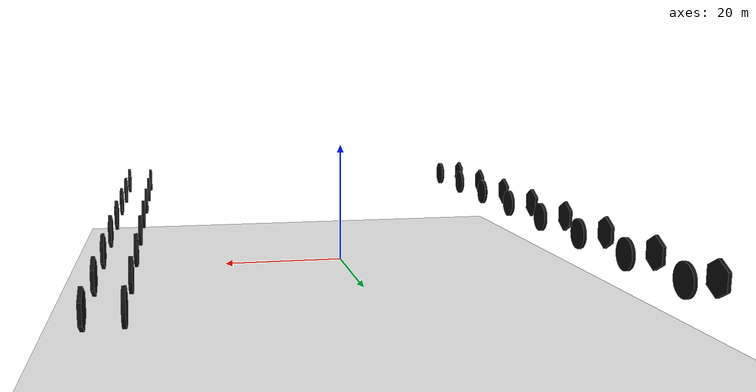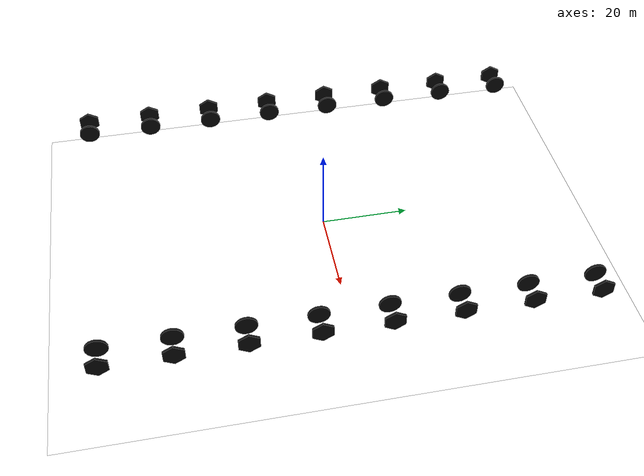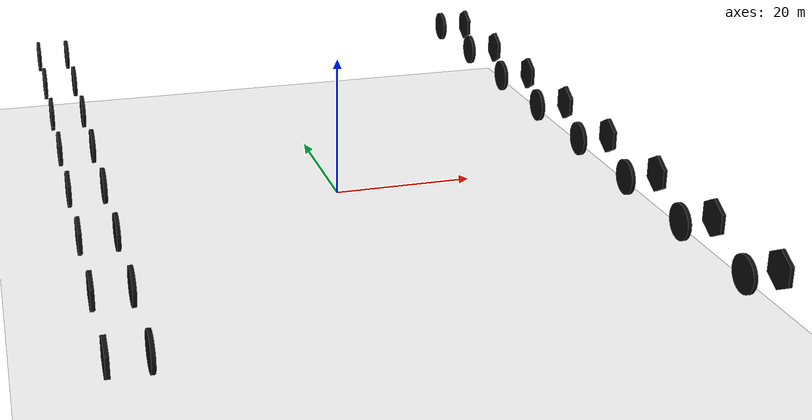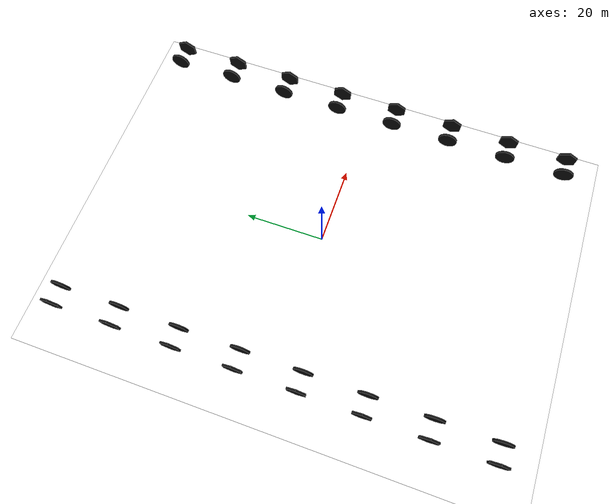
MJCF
<mujoco>
    <compiler texturedir="asset"/>

    <statistic meansize=".05"/>

    <default>
      <geom solref="0.004 1" solimp=".99 .99 .00001"  condim="4"/>
    </default>

    <asset>
      <texture name="field_pattern" type="2d" file="field.png"/>
      <material name="field" texture="field_pattern"/>

      <texture name="black_color" type="2d" file="black.png"/>
      <material name="black" texture="black_color"/>

      <mesh name="outside_rubber" file="asset/outside_rubber/table_outside_rubber.obj" scale='0.1 0.1 0.1'/>
    </asset>

    <worldbody>
      <light directional="true"  specular="0.2 0.2 0.2" pos="0 0 4" dir="0 0 -1"/>

      <body name="background" pos="0 0 -5" euler="0 0 0">
        <geom type="plane" size="500 500 .01" rgba="1.0 1.0 1.0 1.0" contype="0" conaffinity="0"/>
      </body>

      <body name="ground" pos="0 0 -0.03" euler="0 0 180">
        <geom type="plane" size="35 63 0.01" material="field" friction="0.01 0.1 10"/>
      </body>

    <!-- Table's inside rubber pads -->
      <body name="table_side_rubber_y_goal_r">
        <geom type="cylinder" pos="-33.75 -52.5 7.75" euler="90 90 0" size="2.4 0.25"
              contype="5" conaffinity="5" rgba='0.05 0.05 0.05 1' friction="0.01" group="2"/>
      </body>
      <body name="table_side_rubber_y_goal_l">
        <geom type="cylinder" pos="33.75 -52.5 7.75" euler="90 90 0" size="2.4 0.25"
              contype="5" conaffinity="5" rgba='0.05 0.05 0.05 1' friction="0.01" group="2"/>
      </body>
      <body name="table_side_rubber_y_def_r">
        <geom type="cylinder" pos="-33.75 -37.5 7.75" euler="90 90 0" size="2.4 0.25"
              contype="5" conaffinity="5" rgba='0.05 0.05 0.05 1' friction="0.01" group="2"/>
      </body>
      <body name="table_side_rubber_y_def_l">
        <geom type="cylinder" pos="33.75 -37.5 7.75" euler="90 90 0" size="2.4 0.25"
              contype="5" conaffinity="5" rgba='0.05 0.05 0.05 1' friction="0.01" group="2"/>
      </body>
      <body name="table_side_rubber_y_mid_r">
        <geom type="cylinder" pos="-33.75 -7.5 7.75" euler="90 90 0" size="2.4 0.25"
              contype="5" conaffinity="5" rgba='0.05 0.05 0.05 1' friction="0.01" group="2"/>
      </body>
      <body name="table_side_rubber_y_mid_l">
        <geom type="cylinder" pos="33.75 -7.5 7.75" euler="90 90 0" size="2.4 0.25"
              contype="5" conaffinity="5" rgba='0.05 0.05 0.05 1' friction="0.01" group="2"/>
      </body>
      <body name="table_side_rubber_y_attack_r">
        <geom type="cylinder" pos="-33.75 22.5 7.75" euler="90 90 0" size="2.4 0.25"
              contype="5" conaffinity="5" rgba='0.05 0.05 0.05 1' friction="0.01" group="2"/>
      </body>
      <body name="table_side_rubber_y_attack_l">
        <geom type="cylinder" pos="33.75 22.5 7.75" euler="90 90 0" size="2.4 0.25"
              contype="5" conaffinity="5" rgba='0.05 0.05 0.05 1' friction="0.01" group="2"/>
      </body>

      <body name="table_side_rubber_b_goal_r">
        <geom type="cylinder" pos="-33.75 52.5 7.75" euler="90 90 0" size="2.4 0.25"
              contype="5" conaffinity="5" rgba='0.05 0.05 0.05 1' friction="0.01" group="2"/>
      </body>
      <body name="table_side_rubber_b_goal_l">
        <geom type="cylinder" pos="33.75 52.5 7.75" euler="90 90 0" size="2.4 0.25"
              contype="5" conaffinity="5" rgba='0.05 0.05 0.05 1' friction="0.01" group="2"/>
      </body>
      <body name="table_side_rubber_b_def_r">
        <geom type="cylinder" pos="-33.75 37.5 7.75" euler="90 90 0" size="2.4 0.25"
              contype="5" conaffinity="5" rgba='0.05 0.05 0.05 1' friction="0.01" group="2"/>
      </body>
      <body name="table_side_rubber_b_def_l">
        <geom type="cylinder" pos="33.75 37.5 7.75" euler="90 90 0" size="2.4 0.25"
              contype="5" conaffinity="5" rgba='0.05 0.05 0.05 1' friction="0.01" group="2"/>
      </body>
      <body name="table_side_rubber_b_mid_r">
        <geom type="cylinder" pos="-33.75 7.5 7.75" euler="90 90 0" size="2.4 0.25"
              contype="5" conaffinity="5" rgba='0.05 0.05 0.05 1' friction="0.01" group="2"/>
      </body>
      <body name="table_side_rubber_b_mid_l">
        <geom type="cylinder" pos="33.75 7.5 7.75" euler="90 90 0" size="2.4 0.25"
              contype="5" conaffinity="5" rgba='0.05 0.05 0.05 1' friction="0.01" group="2"/>
      </body>
      <body name="table_side_rubber_b_attack_r">
        <geom type="cylinder" pos="-33.75 -22.5 7.75" euler="90 90 0" size="2.4 0.25"
              contype="5" conaffinity="5" rgba='0.05 0.05 0.05 1' friction="0.01" group="2"/>
      </body>
      <body name="table_side_rubber_b_attack_l">
        <geom type="cylinder" pos="33.75 -22.5 7.75" euler="90 90 0" size="2.4 0.25"
              contype="5" conaffinity="5" rgba='0.05 0.05 0.05 1' friction="0.01" group="2"/>
      </body>

    <!-- Table's outside rubber pads -->
      <body name="outside_rubber_y_goal_r" pos="-38.35 -52.5 7.75" euler="0 0 90">
        <geom contype="0" conaffinity="0" type="mesh" mesh="outside_rubber" rgba='0.05 0.05 0.05 1' group="2"></geom>
      </body>
      <body name="outside_rubber_y_goal_l" pos="38.35 -52.5 7.75" euler="0 0 90">
        <geom contype="0" conaffinity="0" type="mesh" mesh="outside_rubber" rgba='0.05 0.05 0.05 1' group="2"></geom>
      </body>
      <body name="outside_rubber_y_def_r" pos="-38.35 -37.5 7.75" euler="0 0 90">
        <geom contype="0" conaffinity="0" type="mesh" mesh="outside_rubber" rgba='0.05 0.05 0.05 1' group="2"></geom>
      </body>
      <body name="outside_rubber_y_def_l" pos="38.35 -37.5 7.75" euler="0 0 90">
        <geom contype="0" conaffinity="0" type="mesh" mesh="outside_rubber" rgba='0.05 0.05 0.05 1' group="2"></geom>
      </body>
      <body name="outside_rubber_y_mid_r" pos="-38.35 -7.5 7.75" euler="0 0 90">
        <geom contype="0" conaffinity="0" type="mesh" mesh="outside_rubber" rgba='0.05 0.05 0.05 1' group="2"></geom>
      </body>
      <body name="outside_rubber_y_mid_l" pos="38.35 -7.5 7.75" euler="0 0 90">
        <geom contype="0" conaffinity="0" type="mesh" mesh="outside_rubber" rgba='0.05 0.05 0.05 1' group="2"></geom>
      </body>
      <body name="outside_rubber_y_attack_r" pos="-38.35 22.5 7.75" euler="0 0 90">
        <geom contype="0" conaffinity="0" type="mesh" mesh="outside_rubber" rgba='0.05 0.05 0.05 1' group="2"></geom>
      </body>
      <body name="outside_rubber_y_attack_l" pos="38.35 22.5 7.75" euler="0 0 90">
        <geom contype="0" conaffinity="0" type="mesh" mesh="outside_rubber" rgba='0.05 0.05 0.05 1' group="2"></geom>
      </body>

      <body name="outside_rubber_b_goal_r" pos="-38.35 52.5 7.75" euler="0 0 90">
        <geom contype="0" conaffinity="0" type="mesh" mesh="outside_rubber" rgba='0.05 0.05 0.05 1' group="2"></geom>
      </body>
      <body name="outside_rubber_b_goal_l" pos="38.35 52.5 7.75" euler="0 0 90">
        <geom contype="0" conaffinity="0" type="mesh" mesh="outside_rubber" rgba='0.05 0.05 0.05 1' group="2"></geom>
      </body>
      <body name="outside_rubber_b_def_r" pos="-38.35 37.5 7.75" euler="0 0 90">
        <geom contype="0" conaffinity="0" type="mesh" mesh="outside_rubber" rgba='0.05 0.05 0.05 1' group="2"></geom>
      </body>
      <body name="outside_rubber_b_def_l" pos="38.35 37.5 7.75" euler="0 0 90">
        <geom contype="0" conaffinity="0" type="mesh" mesh="outside_rubber" rgba='0.05 0.05 0.05 1' group="2"></geom>
      </body>
      <body name="outside_rubber_b_mid_r" pos="-38.35 7.5 7.75" euler="0 0 90">
        <geom contype="0" conaffinity="0" type="mesh" mesh="outside_rubber" rgba='0.05 0.05 0.05 1' group="2"></geom>
      </body>
      <body name="outside_rubber_b_mid_l" pos="38.35 7.5 7.75" euler="0 0 90">
        <geom contype="0" conaffinity="0" type="mesh" mesh="outside_rubber" rgba='0.05 0.05 0.05 1' group="2"></geom>
      </body>
      <body name="outside_rubber_b_attack_r" pos="-38.35 -22.5 7.75" euler="0 0 90">
        <geom contype="0" conaffinity="0" type="mesh" mesh="outside_rubber" rgba='0.05 0.05 0.05 1' group="2"></geom>
      </body>
      <body name="outside_rubber_b_attack_l" pos="38.35 -22.5 7.75" euler="0 0 90">
        <geom contype="0" conaffinity="0" type="mesh" mesh="outside_rubber" rgba='0.05 0.05 0.05 1' group="2"></geom>
      </body>

    <!-- Table serface painting -->
      <body name="table_surface_1">
        <geom type="plane" pos="0 -65.6 11.15" size="38.1 5.5 0.01"
              contype="0" conaffinity="0" rgba='0.05 0.05 0.05 1' group="2"/>
      </body>
      <body name="table_surface_2">
        <geom type="plane" pos="0 65.6 11.15" size="38.1 5.5 0.01"
              contype="0" conaffinity="0" rgba='0.05 0.05 0.05 1' group="2"/>
      </body>
      <body name="table_surface_3">
        <geom type="plane" pos="-36.05 0 11.15" size="2.05 60.1 0.01"
              contype="0" conaffinity="0" rgba='0.05 0.05 0.05 1' group="2"/>
      </body>
      <body name="table_surface_4">
        <geom type="plane" pos="36.05 0 11.15" size="2.05 60.1 0.01"
              contype="0" conaffinity="0" rgba='0.05 0.05 0.05 1' group="2"/>
      </body>

    </worldbody>
  </mujoco>
